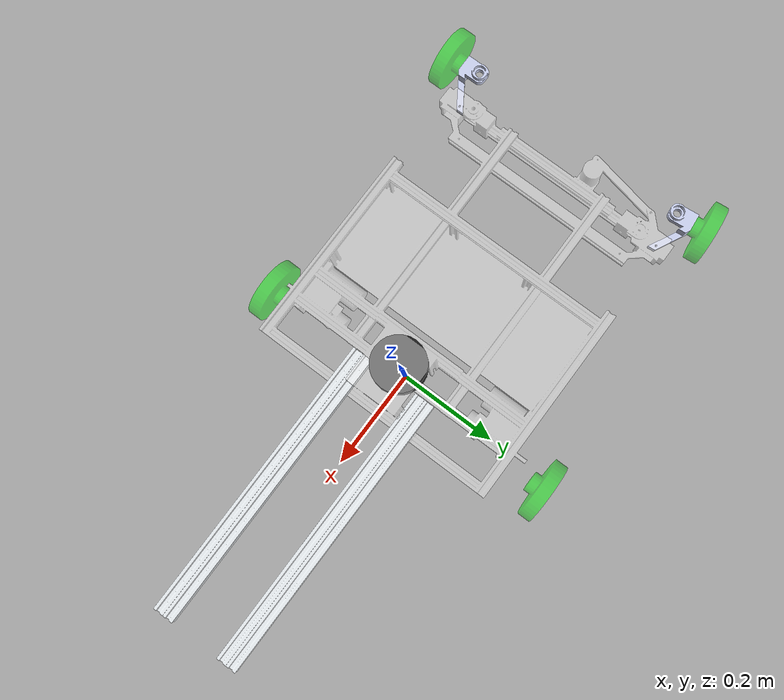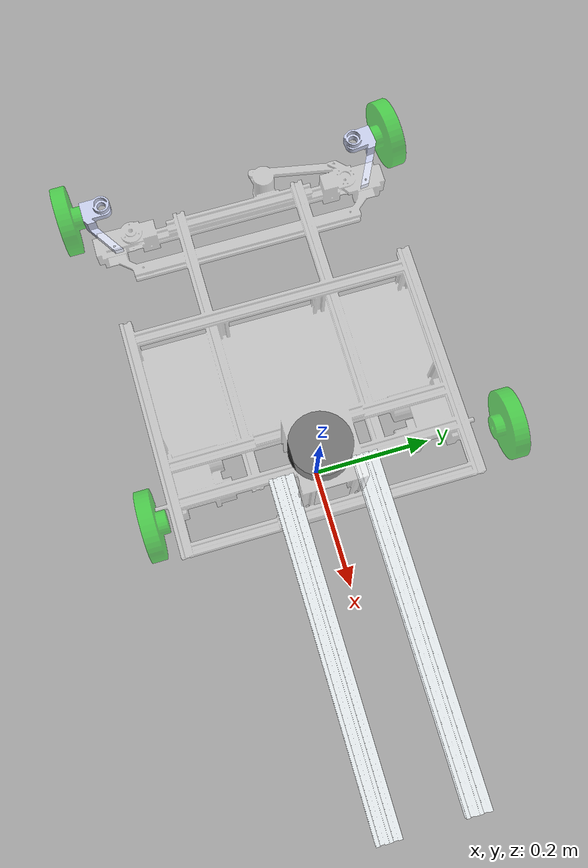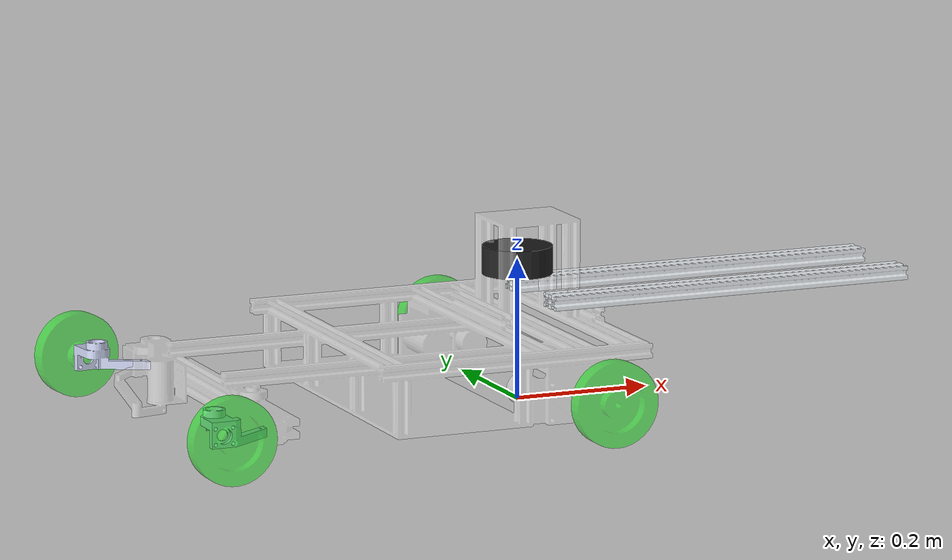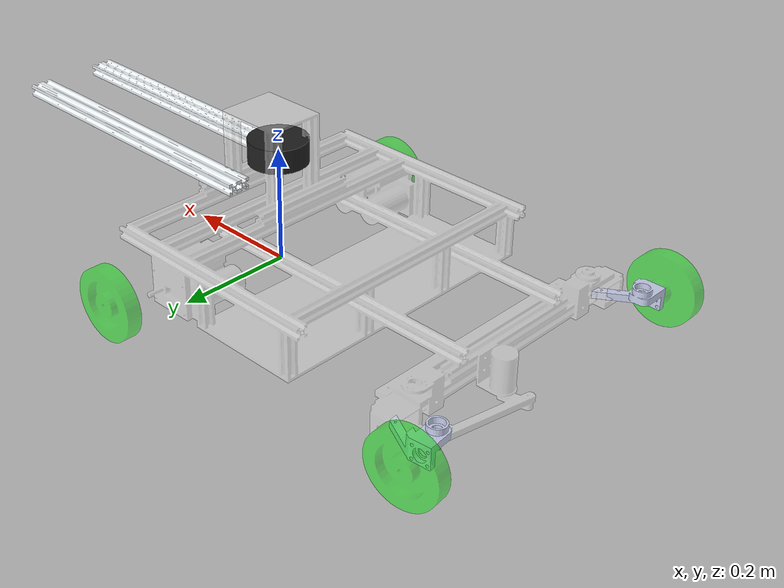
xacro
<?xml version="1.0"?>
<robot xmlns:xacro="http://www.ros.org/wiki/xacro" name="ackermann" >
  <link name="base_footprint">
  </link>
  <joint name="base_link_to_base_footprint" type="fixed">
    <origin xyz="0 0 0.12" rpy="0 0 0"/>
    <parent link="base_footprint"/>
    <child link="base_link"/>
  </joint>

  <link name="laser_frame">
    <visual>
      <geometry>
        <cylinder radius="0.05" length="0.04"/>
      </geometry>
    </visual>
    <collision>
      <geometry>
        <cylinder radius="0.05" length="0.04"/>
      </geometry>
    </collision>
    <inertial>
      <origin
        xyz="0 0 0"
        rpy="0 0 0" />
      <mass
        value="0.01" />
      <inertia
        ixx="0.01" ixy="0.0" ixz="0.0"
        iyy="0.01" iyz="0.0"
        izz="0.01"/>
    </inertial>
  </link>

  <joint name="laser_joint" type="fixed">
    <origin xyz="0 0 0.08" rpy="0 0 0"/>
    <parent link="base_link"/>
    <child link="laser_frame"/>
  </joint>

  <link
    name="base_link">
    <inertial>
      <origin
        xyz="-0.155033044322973 5.21064123681914E-07 -0.0374219405386322"
        rpy="0 0 0" />
      <mass
        value="20.2064614062057" />
      <inertia
        ixx="0.0413486020291867"
        ixy="-1.82796488685308E-07"
        ixz="3.45960820667353E-07"
        iyy="0.0152273358946837"
        iyz="1.05010040456044E-07"
        izz="0.0556459614992652" />
    </inertial>
    <visual>
      <origin
        xyz="0 0 0"
        rpy="0 0 0" />
      <geometry>
        <mesh
          filename="file:///$(find my_robot_description)/meshes/ackermann_meshes/base_link.STL" />
      </geometry>
      <material
        name="">
        <color
          rgba="1 1 1 0.4" />
      </material>
    </visual>
    <collision>
      <origin
        xyz="0 0 0"
        rpy="0 0 0" />
      <geometry>
        <mesh
          filename="file:///$(find my_robot_description)/meshes/ackermann_meshes/base_link.STL" />
      </geometry>
     <surface>
        <poissons_ratio>0.347</poissons_ratio>
        <elastic_modulus>8.8e+09</elastic_modulus>
        <ode>
          <soft_cfm>2e+20</soft_cfm>
          <soft_erp>2e+40</soft_erp>
          <kp>1000</kp>
          <kd>1</kd>
          <max_vel>0.01</max_vel>
          <min_depth>1.0</min_depth>
        </ode>
      </surface>
    </collision>
  </link>
  <link
    name="front_left">
    <inertial>
      <origin
        xyz="3.8858E-15 -0.015274 4.6435E-14"
        rpy="0 0 0" />
      <mass
        value="2.4047" />
      <inertia
        ixx="0.00024514"
        ixy="5.4339E-21"
        ixz="-6.7763E-21"
        iyy="0.00045262"
        iyz="6.4709E-20"
        izz="0.00024514" />
    </inertial>
    <visual>
      <origin
        xyz="0 0 0"
        rpy="0 0 0" />
      <geometry>
        <mesh
          filename="file:///$(find my_robot_description)/meshes/ackermann_meshes/front_left.STL" />
      </geometry>
      <material
        name="">
        <color
          rgba="0 1 0 0.5" />
      </material>
    </visual>
    <collision>
      <origin
        xyz="0 0 0"
        rpy="0 0 0" />
      <geometry>
        <mesh
          filename="file:///$(find my_robot_description)/meshes/ackermann_meshes/front_left.STL" />
      </geometry>
    </collision>
  </link>
  <joint
    name="front_left_joint"
    type="fixed">
    <origin
      xyz="0.0190000000000679 0.301000000000045 -0.0695000000000887"
      rpy="3.14159265358979 0.0849179307157279 3.14159265358979" />
    <parent
      link="base_link" />
    <child
      link="front_left" />
    <axis
      xyz="0 1 0" />
  </joint>
  <link
    name="front_right">
    <inertial>
      <origin
        xyz="-2.9643E-14 0.025726 3.5749E-14"
        rpy="0 0 0" />
      <mass
        value="2.4047" />
      <inertia
        ixx="0.00024514"
        ixy="5.2554E-21"
        ixz="0"
        iyy="0.00045262"
        iyz="4.3994E-20"
        izz="0.00024514" />
    </inertial>
    <visual>
      <origin
        xyz="0 0 0"
        rpy="0 0 0" />
      <geometry>
        <mesh
          filename="file:///$(find my_robot_description)/meshes/ackermann_meshes/front_right.STL" />
      </geometry>
      <material
        name="">
        <color
          rgba="0 1 0 0.5" />
      </material>
    </visual>
    <collision>
      <origin
        xyz="0 0 0"
        rpy="0 0 0" />
      <geometry>
        <mesh
          filename="file:///$(find my_robot_description)/meshes/ackermann_meshes/front_right.STL" />
      </geometry>
    </collision>
  </link>
  <joint
    name="front_right_joint"
    type="fixed">
    <origin
      xyz="0.0190000000000679 -0.259999999999977 -0.0695000000000887"
      rpy="3.14159265358979 -0.692237011731428 0" />
    <parent
      link="base_link" />
    <child
      link="front_right" />
    <axis
      xyz="0 1 0" />
  </joint>
  <link
    name="left_steering">
    <inertial>
      <origin
        xyz="0.012512933493309 -0.0163421015504649 -0.0213045365279689"
        rpy="0 0 0" />
      <mass
        value="1.5" />
      <inertia
        ixx="1.40345098300458E-05"
        ixy="-1.52725955805096E-06"
        ixz="-7.1949991184784E-06"
        iyy="2.900901803087E-05"
        iyz="2.01422351026883E-06"
        izz="3.05054640970382E-05" />
    </inertial>
    <visual>
      <origin
        xyz="0 0 0"
        rpy="0 0 0" />
      <geometry>
        <mesh
          filename="file:///$(find my_robot_description)/meshes/ackermann_meshes/left_steering.STL" />
      </geometry>
      <material
        name="">
        <color
          rgba="0.792156862745098 0.819607843137255 0.933333333333333 1" />
      </material>
    </visual>
    <collision>
      <origin
        xyz="0 0 0"
        rpy="0 0 0" />
      <geometry>
        <mesh
          filename="file:///$(find my_robot_description)/meshes/ackermann_meshes/left_steering.STL" />
      </geometry>
    </collision>
  </link>
  <joint
    name="left_steering_joint"
    type="fixed">
    <origin
      xyz="-0.544750000000063 0.229999999999977 -0.0837500000002835"
      rpy="3.14159265358979 0 -0.00209254658538632" />
    <parent
      link="base_link" />
    <child
      link="left_steering" />
    <axis
      xyz="0 0 1" />
  </joint>
  <link
    name="rear_left">
    <inertial>
      <origin
        xyz="-1.5192E-06 0.025619 0.006692"
        rpy="0 0 0" />
      <mass
        value="2.4047" />
      <inertia
        ixx="0.00024514"
        ixy="-4.9967E-09"
        ixz="-5.3615E-10"
        iyy="0.00045026"
        iyz="2.201E-05"
        izz="0.0002475" />
    </inertial>
    <visual>
      <origin
        xyz="0 0 0"
        rpy="0 0 0" />
      <geometry>
        <mesh
          filename="file:///$(find my_robot_description)/meshes/ackermann_meshes/rear_left.STL" />
      </geometry>
      <material
        name="">
        <color
          rgba="0 1 0 0.5" />
      </material>
    </visual>
    <collision>
      <origin
        xyz="0 0 0"
        rpy="0 0 0" />
      <geometry>
        <mesh
          filename="file:///$(find my_robot_description)/meshes/ackermann_meshes/rear_left.STL" />
      </geometry>
    </collision>
  </link>
  <joint
    name="rear_left_joint"
    type="fixed">
    <origin
      xyz="0 -0.0367488381424265 -0.0159999999999999"
      rpy="3.14159265358979 1.57056930363849 0" />
    <parent
      link="left_steering" />
    <child
      link="rear_left" />
    <axis
      xyz="0 1 0" />
  </joint>
  <link
    name="right_steering">
    <inertial>
      <origin
        xyz="-0.0141851959168551 -0.0149116111585591 -0.0213045365279664"
        rpy="0 0 0" />
      <mass
        value="1.5" />
      <inertia
        ixx="1.45321058215473E-05"
        ixy="3.08590475566129E-06"
        ixz="7.36894346824914E-06"
        iyy="2.85153884323416E-05"
        iyz="1.2337472935684E-06"
        izz="3.05094304900102E-05" />
    </inertial>
    <visual>
      <origin
        xyz="0 0 0"
        rpy="0 0 0" />
      <geometry>
        <mesh
          filename="file:///$(find my_robot_description)/meshes/ackermann_meshes/right_steering.STL" />
      </geometry>
      <material
        name="">
        <color
          rgba="0.792156862745098 0.819607843137255 0.933333333333333 1" />
      </material>
    </visual>
    <collision>
      <origin
        xyz="0 0 0"
        rpy="0 0 0" />
      <geometry>
        <mesh
          filename="file:///$(find my_robot_description)/meshes/ackermann_meshes/right_steering.STL" />
      </geometry>
    </collision>
  </link>
  <joint
    name="right_steering_joint"
    type="fixed">
    <origin
      xyz="-0.544750000000063 -0.230000000000023 -0.0837500000002835"
      rpy="3.14159265358979 0 -3.13242627228221" />
    <parent
      link="base_link" />
    <child
      link="right_steering" />
    <axis
      xyz="0 0 1" />
  </joint>
  <link
    name="rear_right">
    <inertial>
      <origin
        xyz="1.415E-10 0.025722 1.2793E-08"
        rpy="0 0 0" />
      <mass
        value="2.4047" />
      <inertia
        ixx="0.00024514"
        ixy="4.6696E-13"
        ixz="9.4868E-20"
        iyy="0.00045262"
        iyz="4.2319E-11"
        izz="0.00024514" />
    </inertial>
    <visual>
      <origin
        xyz="0 0 0"
        rpy="0 0 0" />
      <geometry>
        <mesh
          filename="file:///$(find my_robot_description)/meshes/ackermann_meshes/rear_right.STL" />
      </geometry>
      <material
        name="">
        <color
          rgba="0 1 0 0.5" />
      </material>
    </visual>
    <collision>
      <origin
        xyz="0 0 0"
        rpy="0 0 0" />
      <geometry>
        <mesh
          filename="file:///$(find my_robot_description)/meshes/ackermann_meshes/rear_right.STL" />
      </geometry>
    </collision>
  </link>
  <joint
    name="rear_right_joint"
    type="fixed">
    <origin
      xyz="0 -0.0370034448281129 -0.0159999999999995"
      rpy="3.14159265358979 -1.55976234848309 0" />
    <parent
      link="right_steering" />
    <child
      link="rear_right" />
    <axis
      xyz="0 1 0" />
  </joint>
  <link
    name="folk_ack_right">
    <inertial>
      <origin
        xyz="-0.257964644660853 0.067499973033625 0.010000000000158"
        rpy="0 0 0" />
      <mass
        value="0.524544939385195" />
      <inertia
        ixx="4.2122916290778E-05"
        ixy="1.2842833560071E-21"
        ixz="-2.93149051739725E-18"
        iyy="0.0132439651239288"
        iyz="-2.33963808392073E-16"
        izz="0.0132439651530273" />
    </inertial>
    <visual>
      <origin
        xyz="0 0 0"
        rpy="0 0 0" />
      <geometry>
        <mesh
          filename="file:///$(find my_robot_description)/meshes/ackermann_meshes/folk_right.STL" />
      </geometry>
      <material
        name="">
        <color
          rgba="0.898039215686275 0.917647058823529 0.929411764705882 1" />
      </material>
    </visual>
    <collision>
      <origin
        xyz="-0.257964644660853 -0.067500026966421 0.0100000000001579"
        rpy="0.0 0.0 0.0" />
        <geometry>
            <box size="0.55 0.04 0.02"/>
        </geometry>
     <surface>
        <poissons_ratio>0.347</poissons_ratio>
        <elastic_modulus>8.8e+09</elastic_modulus>
        <ode>
          <soft_cfm>2e+20</soft_cfm>
          <soft_erp>2e+40</soft_erp>
          <kp>1000</kp>
          <kd>1</kd>
          <max_vel>0.01</max_vel>
          <min_depth>1.0</min_depth>
        </ode>
      </surface>
    </collision>
  </link>
  <joint
    name="folk_ack_right_fixed"
    type="fixed">
    <origin
      xyz="0.0370353553391244 0 0.0200000000000697"
      rpy="0 0 3.14159265358979" />
    <parent
      link="base_link" />
    <child
      link="folk_ack_right" />
    <axis
      xyz="0 0 0" />
  </joint>
  <link
    name="folk_ack_left">
    <inertial>
      <origin
        xyz="-0.257964644660853 -0.067500026966421 0.0100000000001579"
        rpy="0 0 0" />
      <mass
        value="0.524544939385195" />
      <inertia
        ixx="4.2122916290778E-05"
        ixy="1.28430313218206E-21"
        ixz="-2.9314905173971E-18"
        iyy="0.0132439651239288"
        iyz="-2.33963772942766E-16"
        izz="0.0132439651530273" />
    </inertial>
    <visual>
      <origin
        xyz="0 0 0"
        rpy="0 0 0" />
      <geometry>
        <mesh
          filename="file:///$(find my_robot_description)/meshes/ackermann_meshes/folk_left.STL" />
      </geometry>
      <material
        name="">
        <color
          rgba="0.898039215686275 0.917647058823529 0.929411764705882 1" />
      </material>
    </visual>
    <collision>
      <origin
        xyz="-0.257964644660853 -0.067500026966421 0.0100000000001579"
        rpy="0.0 0.0 0.0" />
        <geometry>
            <box size="0.55 0.04 0.02"/>
        </geometry>
     <surface>
        <poissons_ratio>0.347</poissons_ratio>
        <elastic_modulus>8.8e+09</elastic_modulus>
        <ode>
          <soft_cfm>2e+20</soft_cfm>
          <soft_erp>2e+40</soft_erp>
          <kp>1000</kp>
          <kd>1</kd>
          <max_vel>0.01</max_vel>
          <min_depth>1.0</min_depth>
        </ode>
      </surface>
    </collision>
  </link>
  <joint
    name="folk_ack_left_fixed"
    type="fixed">
    <origin
      xyz="0.0370353553391244 0 0.0200000000000697"
      rpy="0 0 3.14159265358979" />
    <parent
      link="base_link" />
    <child
      link="folk_ack_left" />
    <axis
      xyz="0 0 0" />
  </joint>

    <gazebo reference="front_left">
      <material>Gazebo/Green</material>
    </gazebo>

    <gazebo reference="front_right">
      <material>Gazebo/Green</material>
    </gazebo>

    <gazebo reference="rear_left">
      <material>Gazebo/Green</material>
    </gazebo>

    <gazebo reference="rear_right">
      <material>Gazebo/Green</material>
    </gazebo>

    <gazebo reference="right_steering">
      <material>Gazebo/Red</material>
    </gazebo>

    <gazebo reference="left_steering">
      <material>Gazebo/Red</material>
    </gazebo>

  <gazebo>
    <plugin name="gazebo_ros_planar_move_ack" filename="libgazebo_ros_planar_move.so">

      <ros>

        <!-- Add a namespace -->
        <namespace></namespace>

        <!-- Remap the default topic -->
        <remapping>/cmd_vel:=/cmd_vel</remapping>
        <remapping>odom:=/ack/odom</remapping>

      </ros>

      <update_rate>100</update_rate>
      <publish_rate>100</publish_rate>

      <!-- output -->
      <publish_odom>true</publish_odom>
      <publish_odom_tf>true</publish_odom_tf>

      <odometry_frame>odom</odometry_frame>
      <robot_base_frame>base_footprint</robot_base_frame>
      <publish_wheel_tf>true</publish_wheel_tf>

    </plugin>
  </gazebo>

 <gazebo reference="laser_frame">
    <material>Gazebo/Black</material>

    <sensor name="laser" type="ray">
      <namespace></namespace>
      <pose>0 0 0 0 0 0</pose>
      <visualize>false</visualize>
      <update_rate>10</update_rate>
      <ray>
        <scan>
          <horizontal>
            <samples>360</samples>
            <min_angle>-3.14</min_angle>
            <max_angle>3.14</max_angle>
          </horizontal>
        </scan>
        <range>
          <min>0.3</min>
          <max>12</max>
        </range>
      </ray>
      <plugin name="laser" filename="libgazebo_ros_ray_sensor.so">
        <namespace></namespace>
        <ros>
          <argument>~/out:=scan</argument>
        </ros>
        <output_type>sensor_msgs/LaserScan</output_type>
        <frame_name>laser_frame</frame_name>
      </plugin>
    </sensor>
  </gazebo>
</robot>
